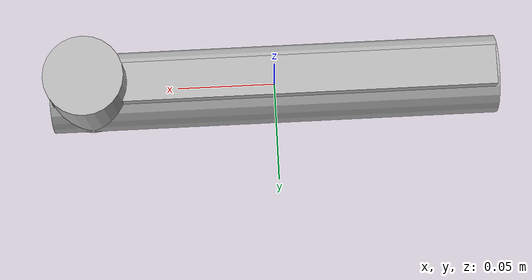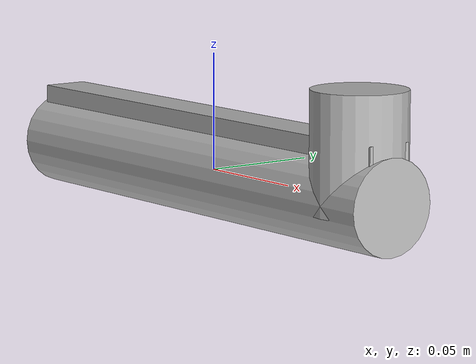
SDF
<sdf version="1.9">
  <model name="arm">
    <link name="arm_link">
      <pose>0 0 0 0 0 0</pose>
      <inertial>
        <pose>0.1074 0 0.0071 0 0 0</pose>
        <mass>0.248</mass>
        <inertia>
          <ixx>0.00085084</ixx>
          <iyy>0.00087355</iyy>
          <izz>0.00011721</izz>
          <ixy>0</ixy>
          <ixz>2.27e-05</ixz>
          <iyz>0</iyz>
        </inertia>
      </inertial>

      <collision name="arm_collision">
        <pose>0 0 0 0 1.5708 0</pose>
        <geometry>
          <cylinder>
            <length>0.229</length>
            <radius>0.02</radius>
          </cylinder>
        </geometry>
      </collision>

      <collision name="motor_collision">
        <pose>0.0945 0 0.02 0 0 0</pose>
        <geometry>
          <cylinder>
            <length>0.05</length>
            <radius>0.02</radius>
          </cylinder>
        </geometry>
      </collision>

      <visual name="arm_visual">
        <pose>0 0 0 0 1.5708 0</pose>
        <geometry>
          <cylinder>
            <length>0.229</length>
            <radius>0.02</radius>
          </cylinder>
        </geometry>
      </visual>

      <visual name="motor_visual">
        <pose>0.0945 0 0.02 0 0 0</pose>
        <geometry>
          <cylinder>
            <length>0.05</length>
            <radius>0.02</radius>
          </cylinder>
        </geometry>
      </visual>
    </link>

    <!-- Propeller link (separate for revolute joint) -->
    <link name="prop_link">
      <inertial>
        <pose>0 0 0.02 0 0 0</pose>
        <mass>0.024</mass>
        <inertia>
          <ixx>4.25e-06</ixx>
          <iyy>0.00010145</iyy>
          <izz>0.0001053</izz>
          <ixy>0</ixy>
          <ixz>0</ixz>
          <iyz>0</iyz>
        </inertia>
      </inertial>
      <collision name="prop_collision">
        <pose>0 0 0.02 0 0 0</pose>
        <geometry>
          <box>
            <size>0.225 0.02 0.01</size>
          </box>
        </geometry>
      </collision>
      <visual name="prop_visual">
        <pose>0 0 0.02 0 0 0</pose>
        <geometry>
          <box>
            <size>0.225 0.02 0.01</size>
          </box>
        </geometry>
      </visual>
    </link>

    <!-- Joint between arm and propeller -->
    <joint name="prop_joint" type="revolute">
      <parent>arm_link</parent>
      <child>prop_link</child>
      <pose>0.0945 0 0.02 0 0 0</pose>
      <axis>
        <xyz>0 0 1</xyz>
        <limit>
          <lower>-1e16</lower>
          <upper>1e16</upper>
        </limit>
        <dynamics>
          <spring_reference>0</spring_reference>
          <spring_stiffness>0</spring_stiffness>
        </dynamics>
      </axis>
    </joint>
  </model>
</sdf>
